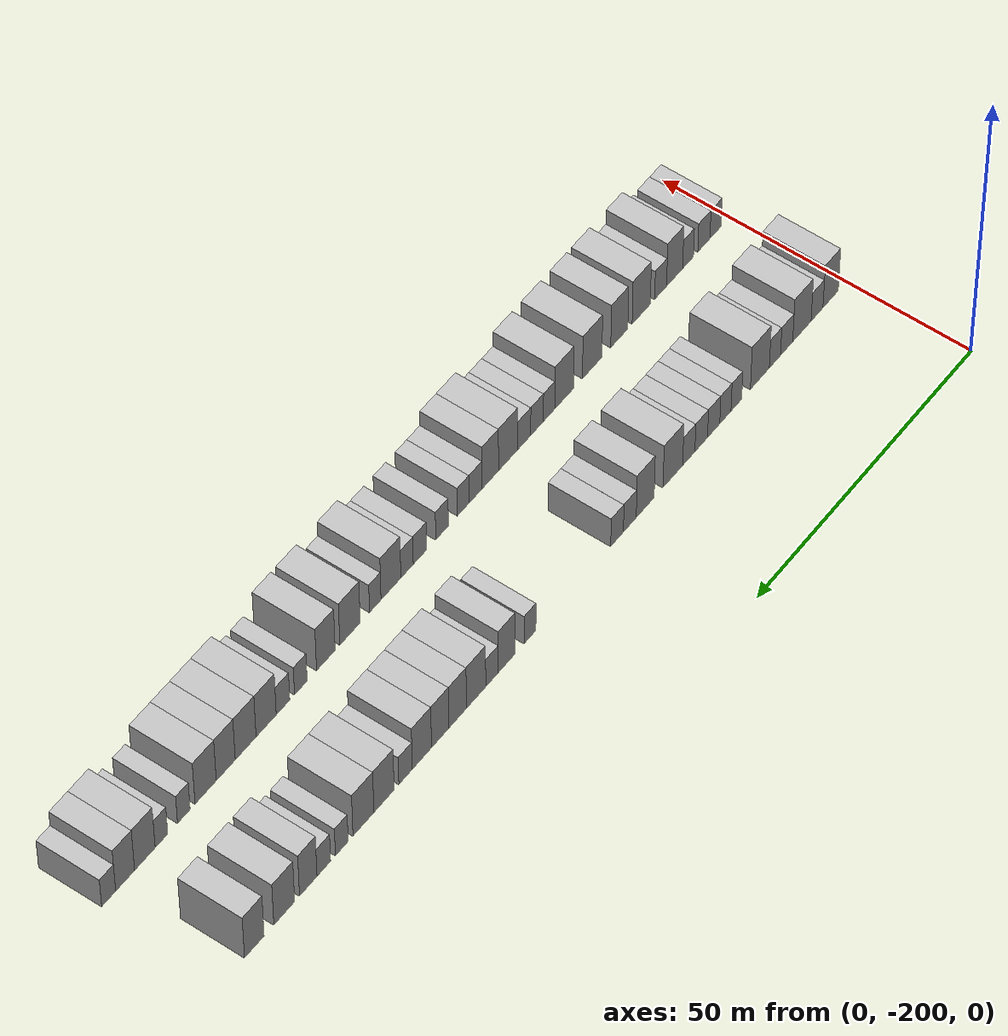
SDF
<sdf version="1.6">
 <world name="default">
  <model name="building_1">
   <static>1</static>
   <pose>25.0000 -196.1872 0 0.000000 0.000000 0.000000</pose>
   <link name="link">
    <pose>0 0 4.50 0 0 0</pose>
    <collision name="collision"><geometry><box><size>10.0000 3.6256 9.0000</size></box></geometry></collision>
    <visual name="visual">
     <cast_shadows>0</cast_shadows>
     <geometry><box><size>10.0000 3.6256 9.0000</size></box></geometry>
     <material>
      <script>
       <uri>model://HANNAS_wall/materials/scripts</uri>
       <uri>model://HANNAS_wall/materials/textures</uri>
       <name>vrc/HANNAS_wall</name>
      </script>
     </material>
    </visual>
   </link>
  </model>
  <model name="building_2">
   <static>1</static>
   <pose>25.0000 -192.9768 0 0.000000 0.000000 0.000000</pose>
   <link name="link">
    <pose>0 0 3.00 0 0 0</pose>
    <collision name="collision"><geometry><box><size>10.0000 2.7953 6.0000</size></box></geometry></collision>
    <visual name="visual">
     <cast_shadows>0</cast_shadows>
     <geometry><box><size>10.0000 2.7953 6.0000</size></box></geometry>
     <material>
      <script>
       <uri>model://HANNAS_wall/materials/scripts</uri>
       <uri>model://HANNAS_wall/materials/textures</uri>
       <name>vrc/HANNAS_wall</name>
      </script>
     </material>
    </visual>
   </link>
  </model>
  <model name="building_3">
   <static>1</static>
   <pose>25.0000 -189.4172 0 0.000000 0.000000 0.000000</pose>
   <link name="link">
    <pose>0 0 4.50 0 0 0</pose>
    <collision name="collision"><geometry><box><size>10.0000 4.3239 9.0000</size></box></geometry></collision>
    <visual name="visual">
     <cast_shadows>0</cast_shadows>
     <geometry><box><size>10.0000 4.3239 9.0000</size></box></geometry>
     <material>
      <script>
       <uri>model://HANNAS_wall/materials/scripts</uri>
       <uri>model://HANNAS_wall/materials/textures</uri>
       <name>vrc/HANNAS_wall</name>
      </script>
     </material>
    </visual>
   </link>
  </model>
  <model name="building_4">
   <static>1</static>
   <pose>25.0000 -185.8251 0 0.000000 0.000000 0.000000</pose>
   <link name="link">
    <pose>0 0 3.00 0 0 0</pose>
    <collision name="collision"><geometry><box><size>10.0000 2.8601 6.0000</size></box></geometry></collision>
    <visual name="visual">
     <cast_shadows>0</cast_shadows>
     <geometry><box><size>10.0000 2.8601 6.0000</size></box></geometry>
     <material>
      <script>
       <uri>model://HANNAS_wall/materials/scripts</uri>
       <uri>model://HANNAS_wall/materials/textures</uri>
       <name>vrc/HANNAS_wall</name>
      </script>
     </material>
    </visual>
   </link>
  </model>
  <model name="building_5">
   <static>1</static>
   <pose>25.0000 -183.0920 0 0.000000 0.000000 0.000000</pose>
   <link name="link">
    <pose>0 0 3.00 0 0 0</pose>
    <collision name="collision"><geometry><box><size>10.0000 2.6062 6.0000</size></box></geometry></collision>
    <visual name="visual">
     <cast_shadows>0</cast_shadows>
     <geometry><box><size>10.0000 2.6062 6.0000</size></box></geometry>
     <material>
      <script>
       <uri>model://HANNAS_wall/materials/scripts</uri>
       <uri>model://HANNAS_wall/materials/textures</uri>
       <name>vrc/HANNAS_wall</name>
      </script>
     </material>
    </visual>
   </link>
  </model>
  <model name="building_6">
   <static>1</static>
   <pose>25.0000 -179.5854 0 0.000000 0.000000 0.000000</pose>
   <link name="link">
    <pose>0 0 4.50 0 0 0</pose>
    <collision name="collision"><geometry><box><size>10.0000 4.4069 9.0000</size></box></geometry></collision>
    <visual name="visual">
     <cast_shadows>0</cast_shadows>
     <geometry><box><size>10.0000 4.4069 9.0000</size></box></geometry>
     <material>
      <script>
       <uri>model://HANNAS_wall/materials/scripts</uri>
       <uri>model://HANNAS_wall/materials/textures</uri>
       <name>vrc/HANNAS_wall</name>
      </script>
     </material>
    </visual>
   </link>
  </model>
  <model name="building_7">
   <static>1</static>
   <pose>25.0000 -174.1378 0 0.000000 0.000000 0.000000</pose>
   <link name="link">
    <pose>0 0 3.00 0 0 0</pose>
    <collision name="collision"><geometry><box><size>10.0000 2.4883 6.0000</size></box></geometry></collision>
    <visual name="visual">
     <cast_shadows>0</cast_shadows>
     <geometry><box><size>10.0000 2.4883 6.0000</size></box></geometry>
     <material>
      <script>
       <uri>model://HANNAS_wall/materials/scripts</uri>
       <uri>model://HANNAS_wall/materials/textures</uri>
       <name>vrc/HANNAS_wall</name>
      </script>
     </material>
    </visual>
   </link>
  </model>
  <model name="building_8">
   <static>1</static>
   <pose>25.0000 -171.6017 0 0.000000 0.000000 0.000000</pose>
   <link name="link">
    <pose>0 0 3.00 0 0 0</pose>
    <collision name="collision"><geometry><box><size>10.0000 2.5839 6.0000</size></box></geometry></collision>
    <visual name="visual">
     <cast_shadows>0</cast_shadows>
     <geometry><box><size>10.0000 2.5839 6.0000</size></box></geometry>
     <material>
      <script>
       <uri>model://HANNAS_wall/materials/scripts</uri>
       <uri>model://HANNAS_wall/materials/textures</uri>
       <name>vrc/HANNAS_wall</name>
      </script>
     </material>
    </visual>
   </link>
  </model>
  <model name="building_9">
   <static>1</static>
   <pose>25.0000 -168.9097 0 0.000000 0.000000 0.000000</pose>
   <link name="link">
    <pose>0 0 3.00 0 0 0</pose>
    <collision name="collision"><geometry><box><size>10.0000 2.8001 6.0000</size></box></geometry></collision>
    <visual name="visual">
     <cast_shadows>0</cast_shadows>
     <geometry><box><size>10.0000 2.8001 6.0000</size></box></geometry>
     <material>
      <script>
       <uri>model://HANNAS_wall/materials/scripts</uri>
       <uri>model://HANNAS_wall/materials/textures</uri>
       <name>vrc/HANNAS_wall</name>
      </script>
     </material>
    </visual>
   </link>
  </model>
  <model name="building_10">
   <static>1</static>
   <pose>25.0000 -166.0650 0 0.000000 0.000000 0.000000</pose>
   <link name="link">
    <pose>0 0 3.00 0 0 0</pose>
    <collision name="collision"><geometry><box><size>10.0000 2.8893 6.0000</size></box></geometry></collision>
    <visual name="visual">
     <cast_shadows>0</cast_shadows>
     <geometry><box><size>10.0000 2.8893 6.0000</size></box></geometry>
     <material>
      <script>
       <uri>model://HANNAS_wall/materials/scripts</uri>
       <uri>model://HANNAS_wall/materials/textures</uri>
       <name>vrc/HANNAS_wall</name>
      </script>
     </material>
    </visual>
   </link>
  </model>
  <model name="building_11">
   <static>1</static>
   <pose>25.0000 -163.2217 0 0.000000 0.000000 0.000000</pose>
   <link name="link">
    <pose>0 0 3.00 0 0 0</pose>
    <collision name="collision"><geometry><box><size>10.0000 2.7973 6.0000</size></box></geometry></collision>
    <visual name="visual">
     <cast_shadows>0</cast_shadows>
     <geometry><box><size>10.0000 2.7973 6.0000</size></box></geometry>
     <material>
      <script>
       <uri>model://HANNAS_wall/materials/scripts</uri>
       <uri>model://HANNAS_wall/materials/textures</uri>
       <name>vrc/HANNAS_wall</name>
      </script>
     </material>
    </visual>
   </link>
  </model>
  <model name="building_12">
   <static>1</static>
   <pose>25.0000 -159.5874 0 0.000000 0.000000 0.000000</pose>
   <link name="link">
    <pose>0 0 4.50 0 0 0</pose>
    <collision name="collision"><geometry><box><size>10.0000 4.4713 9.0000</size></box></geometry></collision>
    <visual name="visual">
     <cast_shadows>0</cast_shadows>
     <geometry><box><size>10.0000 4.4713 9.0000</size></box></geometry>
     <material>
      <script>
       <uri>model://HANNAS_wall/materials/scripts</uri>
       <uri>model://HANNAS_wall/materials/textures</uri>
       <name>vrc/HANNAS_wall</name>
      </script>
     </material>
    </visual>
   </link>
  </model>
  <model name="building_13">
   <static>1</static>
   <pose>25.0000 -153.3318 0 0.000000 0.000000 0.000000</pose>
   <link name="link">
    <pose>0 0 4.50 0 0 0</pose>
    <collision name="collision"><geometry><box><size>10.0000 4.0397 9.0000</size></box></geometry></collision>
    <visual name="visual">
     <cast_shadows>0</cast_shadows>
     <geometry><box><size>10.0000 4.0397 9.0000</size></box></geometry>
     <material>
      <script>
       <uri>model://HANNAS_wall/materials/scripts</uri>
       <uri>model://HANNAS_wall/materials/textures</uri>
       <name>vrc/HANNAS_wall</name>
      </script>
     </material>
    </visual>
   </link>
  </model>
  <model name="building_14">
   <static>1</static>
   <pose>25.0000 -149.8733 0 0.000000 0.000000 0.000000</pose>
   <link name="link">
    <pose>0 0 3.00 0 0 0</pose>
    <collision name="collision"><geometry><box><size>10.0000 2.8774 6.0000</size></box></geometry></collision>
    <visual name="visual">
     <cast_shadows>0</cast_shadows>
     <geometry><box><size>10.0000 2.8774 6.0000</size></box></geometry>
     <material>
      <script>
       <uri>model://HANNAS_wall/materials/scripts</uri>
       <uri>model://HANNAS_wall/materials/textures</uri>
       <name>vrc/HANNAS_wall</name>
      </script>
     </material>
    </visual>
   </link>
  </model>
  <model name="building_15">
   <static>1</static>
   <pose>25.0000 -147.0104 0 0.000000 0.000000 0.000000</pose>
   <link name="link">
    <pose>0 0 3.00 0 0 0</pose>
    <collision name="collision"><geometry><box><size>10.0000 2.8483 6.0000</size></box></geometry></collision>
    <visual name="visual">
     <cast_shadows>0</cast_shadows>
     <geometry><box><size>10.0000 2.8483 6.0000</size></box></geometry>
     <material>
      <script>
       <uri>model://HANNAS_wall/materials/scripts</uri>
       <uri>model://HANNAS_wall/materials/textures</uri>
       <name>vrc/HANNAS_wall</name>
      </script>
     </material>
    </visual>
   </link>
  </model>
  <model name="building_16">
   <static>1</static>
   <pose>25.0000 -127.7283 0 0.000000 0.000000 0.000000</pose>
   <link name="link">
    <pose>0 0 3.00 0 0 0</pose>
    <collision name="collision"><geometry><box><size>10.0000 2.5720 6.0000</size></box></geometry></collision>
    <visual name="visual">
     <cast_shadows>0</cast_shadows>
     <geometry><box><size>10.0000 2.5720 6.0000</size></box></geometry>
     <material>
      <script>
       <uri>model://HANNAS_wall/materials/scripts</uri>
       <uri>model://HANNAS_wall/materials/textures</uri>
       <name>vrc/HANNAS_wall</name>
      </script>
     </material>
    </visual>
   </link>
  </model>
  <model name="building_17">
   <static>1</static>
   <pose>25.0000 -122.6291 0 0.000000 0.000000 0.000000</pose>
   <link name="link">
    <pose>0 0 4.50 0 0 0</pose>
    <collision name="collision"><geometry><box><size>10.0000 3.6263 9.0000</size></box></geometry></collision>
    <visual name="visual">
     <cast_shadows>0</cast_shadows>
     <geometry><box><size>10.0000 3.6263 9.0000</size></box></geometry>
     <material>
      <script>
       <uri>model://HANNAS_wall/materials/scripts</uri>
       <uri>model://HANNAS_wall/materials/textures</uri>
       <name>vrc/HANNAS_wall</name>
      </script>
     </material>
    </visual>
   </link>
  </model>
  <model name="building_18">
   <static>1</static>
   <pose>25.0000 -119.4527 0 0.000000 0.000000 0.000000</pose>
   <link name="link">
    <pose>0 0 3.00 0 0 0</pose>
    <collision name="collision"><geometry><box><size>10.0000 2.7266 6.0000</size></box></geometry></collision>
    <visual name="visual">
     <cast_shadows>0</cast_shadows>
     <geometry><box><size>10.0000 2.7266 6.0000</size></box></geometry>
     <material>
      <script>
       <uri>model://HANNAS_wall/materials/scripts</uri>
       <uri>model://HANNAS_wall/materials/textures</uri>
       <name>vrc/HANNAS_wall</name>
      </script>
     </material>
    </visual>
   </link>
  </model>
  <model name="building_19">
   <static>1</static>
   <pose>25.0000 -115.9980 0 0.000000 0.000000 0.000000</pose>
   <link name="link">
    <pose>0 0 4.50 0 0 0</pose>
    <collision name="collision"><geometry><box><size>10.0000 4.1827 9.0000</size></box></geometry></collision>
    <visual name="visual">
     <cast_shadows>0</cast_shadows>
     <geometry><box><size>10.0000 4.1827 9.0000</size></box></geometry>
     <material>
      <script>
       <uri>model://HANNAS_wall/materials/scripts</uri>
       <uri>model://HANNAS_wall/materials/textures</uri>
       <name>vrc/HANNAS_wall</name>
      </script>
     </material>
    </visual>
   </link>
  </model>
  <model name="building_20">
   <static>1</static>
   <pose>25.0000 -112.0309 0 0.000000 0.000000 0.000000</pose>
   <link name="link">
    <pose>0 0 4.50 0 0 0</pose>
    <collision name="collision"><geometry><box><size>10.0000 3.7516 9.0000</size></box></geometry></collision>
    <visual name="visual">
     <cast_shadows>0</cast_shadows>
     <geometry><box><size>10.0000 3.7516 9.0000</size></box></geometry>
     <material>
      <script>
       <uri>model://HANNAS_wall/materials/scripts</uri>
       <uri>model://HANNAS_wall/materials/textures</uri>
       <name>vrc/HANNAS_wall</name>
      </script>
     </material>
    </visual>
   </link>
  </model>
  <model name="building_21">
   <static>1</static>
   <pose>25.0000 -108.2839 0 0.000000 0.000000 0.000000</pose>
   <link name="link">
    <pose>0 0 4.50 0 0 0</pose>
    <collision name="collision"><geometry><box><size>10.0000 3.7425 9.0000</size></box></geometry></collision>
    <visual name="visual">
     <cast_shadows>0</cast_shadows>
     <geometry><box><size>10.0000 3.7425 9.0000</size></box></geometry>
     <material>
      <script>
       <uri>model://HANNAS_wall/materials/scripts</uri>
       <uri>model://HANNAS_wall/materials/textures</uri>
       <name>vrc/HANNAS_wall</name>
      </script>
     </material>
    </visual>
   </link>
  </model>
  <model name="building_22">
   <static>1</static>
   <pose>25.0000 -104.3630 0 0.000000 0.000000 0.000000</pose>
   <link name="link">
    <pose>0 0 4.50 0 0 0</pose>
    <collision name="collision"><geometry><box><size>10.0000 4.0994 9.0000</size></box></geometry></collision>
    <visual name="visual">
     <cast_shadows>0</cast_shadows>
     <geometry><box><size>10.0000 4.0994 9.0000</size></box></geometry>
     <material>
      <script>
       <uri>model://HANNAS_wall/materials/scripts</uri>
       <uri>model://HANNAS_wall/materials/textures</uri>
       <name>vrc/HANNAS_wall</name>
      </script>
     </material>
    </visual>
   </link>
  </model>
  <model name="building_23">
   <static>1</static>
   <pose>25.0000 -100.8907 0 0.000000 0.000000 0.000000</pose>
   <link name="link">
    <pose>0 0 3.00 0 0 0</pose>
    <collision name="collision"><geometry><box><size>10.0000 2.8451 6.0000</size></box></geometry></collision>
    <visual name="visual">
     <cast_shadows>0</cast_shadows>
     <geometry><box><size>10.0000 2.8451 6.0000</size></box></geometry>
     <material>
      <script>
       <uri>model://HANNAS_wall/materials/scripts</uri>
       <uri>model://HANNAS_wall/materials/textures</uri>
       <name>vrc/HANNAS_wall</name>
      </script>
     </material>
    </visual>
   </link>
  </model>
  <model name="building_24">
   <static>1</static>
   <pose>25.0000 -96.3340 0 0.000000 0.000000 0.000000</pose>
   <link name="link">
    <pose>0 0 4.50 0 0 0</pose>
    <collision name="collision"><geometry><box><size>10.0000 4.2683 9.0000</size></box></geometry></collision>
    <visual name="visual">
     <cast_shadows>0</cast_shadows>
     <geometry><box><size>10.0000 4.2683 9.0000</size></box></geometry>
     <material>
      <script>
       <uri>model://HANNAS_wall/materials/scripts</uri>
       <uri>model://HANNAS_wall/materials/textures</uri>
       <name>vrc/HANNAS_wall</name>
      </script>
     </material>
    </visual>
   </link>
  </model>
  <model name="building_25">
   <static>1</static>
   <pose>25.0000 -92.0035 0 0.000000 0.000000 0.000000</pose>
   <link name="link">
    <pose>0 0 4.50 0 0 0</pose>
    <collision name="collision"><geometry><box><size>10.0000 4.3929 9.0000</size></box></geometry></collision>
    <visual name="visual">
     <cast_shadows>0</cast_shadows>
     <geometry><box><size>10.0000 4.3929 9.0000</size></box></geometry>
     <material>
      <script>
       <uri>model://HANNAS_wall/materials/scripts</uri>
       <uri>model://HANNAS_wall/materials/textures</uri>
       <name>vrc/HANNAS_wall</name>
      </script>
     </material>
    </visual>
   </link>
  </model>
  <model name="building_26">
   <static>1</static>
   <pose>25.0000 -87.4747 0 0.000000 0.000000 0.000000</pose>
   <link name="link">
    <pose>0 0 3.00 0 0 0</pose>
    <collision name="collision"><geometry><box><size>10.0000 2.6648 6.0000</size></box></geometry></collision>
    <visual name="visual">
     <cast_shadows>0</cast_shadows>
     <geometry><box><size>10.0000 2.6648 6.0000</size></box></geometry>
     <material>
      <script>
       <uri>model://HANNAS_wall/materials/scripts</uri>
       <uri>model://HANNAS_wall/materials/textures</uri>
       <name>vrc/HANNAS_wall</name>
      </script>
     </material>
    </visual>
   </link>
  </model>
  <model name="building_27">
   <static>1</static>
   <pose>25.0000 -83.7285 0 0.000000 0.000000 0.000000</pose>
   <link name="link">
    <pose>0 0 3.00 0 0 0</pose>
    <collision name="collision"><geometry><box><size>10.0000 2.8275 6.0000</size></box></geometry></collision>
    <visual name="visual">
     <cast_shadows>0</cast_shadows>
     <geometry><box><size>10.0000 2.8275 6.0000</size></box></geometry>
     <material>
      <script>
       <uri>model://HANNAS_wall/materials/scripts</uri>
       <uri>model://HANNAS_wall/materials/textures</uri>
       <name>vrc/HANNAS_wall</name>
      </script>
     </material>
    </visual>
   </link>
  </model>
  <model name="building_28">
   <static>1</static>
   <pose>25.0000 -80.5029 0 0.000000 0.000000 0.000000</pose>
   <link name="link">
    <pose>0 0 4.50 0 0 0</pose>
    <collision name="collision"><geometry><box><size>10.0000 3.6236 9.0000</size></box></geometry></collision>
    <visual name="visual">
     <cast_shadows>0</cast_shadows>
     <geometry><box><size>10.0000 3.6236 9.0000</size></box></geometry>
     <material>
      <script>
       <uri>model://HANNAS_wall/materials/scripts</uri>
       <uri>model://HANNAS_wall/materials/textures</uri>
       <name>vrc/HANNAS_wall</name>
      </script>
     </material>
    </visual>
   </link>
  </model>
  <model name="building_29">
   <static>1</static>
   <pose>25.0000 -75.5467 0 0.000000 0.000000 0.000000</pose>
   <link name="link">
    <pose>0 0 4.50 0 0 0</pose>
    <collision name="collision"><geometry><box><size>10.0000 4.2889 9.0000</size></box></geometry></collision>
    <visual name="visual">
     <cast_shadows>0</cast_shadows>
     <geometry><box><size>10.0000 4.2889 9.0000</size></box></geometry>
     <material>
      <script>
       <uri>model://HANNAS_wall/materials/scripts</uri>
       <uri>model://HANNAS_wall/materials/textures</uri>
       <name>vrc/HANNAS_wall</name>
      </script>
     </material>
    </visual>
   </link>
  </model>
  <model name="building_30">
   <static>1</static>
   <pose>25.0000 -69.4031 0 0.000000 0.000000 0.000000</pose>
   <link name="link">
    <pose>0 0 4.50 0 0 0</pose>
    <collision name="collision"><geometry><box><size>10.0000 3.9982 9.0000</size></box></geometry></collision>
    <visual name="visual">
     <cast_shadows>0</cast_shadows>
     <geometry><box><size>10.0000 3.9982 9.0000</size></box></geometry>
     <material>
      <script>
       <uri>model://HANNAS_wall/materials/scripts</uri>
       <uri>model://HANNAS_wall/materials/textures</uri>
       <name>vrc/HANNAS_wall</name>
      </script>
     </material>
    </visual>
   </link>
  </model>
  <model name="building_100">
   <static>1</static>
   <pose>44.0000 -196.6614 0 0.000000 0.000000 0.000000</pose>
   <link name="link">
    <pose>0 0 3.00 0 0 0</pose>
    <collision name="collision"><geometry><box><size>10.0000 2.6772 6.0000</size></box></geometry></collision>
    <visual name="visual">
     <cast_shadows>0</cast_shadows>
     <geometry><box><size>10.0000 2.6772 6.0000</size></box></geometry>
     <material>
      <script>
       <uri>model://HANNAS_wall/materials/scripts</uri>
       <uri>model://HANNAS_wall/materials/textures</uri>
       <name>vrc/HANNAS_wall</name>
      </script>
     </material>
    </visual>
   </link>
  </model>
  <model name="building_101">
   <static>1</static>
   <pose>44.0000 -193.8934 0 0.000000 0.000000 0.000000</pose>
   <link name="link">
    <pose>0 0 3.00 0 0 0</pose>
    <collision name="collision"><geometry><box><size>10.0000 2.8586 6.0000</size></box></geometry></collision>
    <visual name="visual">
     <cast_shadows>0</cast_shadows>
     <geometry><box><size>10.0000 2.8586 6.0000</size></box></geometry>
     <material>
      <script>
       <uri>model://HANNAS_wall/materials/scripts</uri>
       <uri>model://HANNAS_wall/materials/textures</uri>
       <name>vrc/HANNAS_wall</name>
      </script>
     </material>
    </visual>
   </link>
  </model>
  <model name="building_102">
   <static>1</static>
   <pose>44.0000 -190.1951 0 0.000000 0.000000 0.000000</pose>
   <link name="link">
    <pose>0 0 3.00 0 0 0</pose>
    <collision name="collision"><geometry><box><size>10.0000 2.5381 6.0000</size></box></geometry></collision>
    <visual name="visual">
     <cast_shadows>0</cast_shadows>
     <geometry><box><size>10.0000 2.5381 6.0000</size></box></geometry>
     <material>
      <script>
       <uri>model://HANNAS_wall/materials/scripts</uri>
       <uri>model://HANNAS_wall/materials/textures</uri>
       <name>vrc/HANNAS_wall</name>
      </script>
     </material>
    </visual>
   </link>
  </model>
  <model name="building_103">
   <static>1</static>
   <pose>44.0000 -187.0575 0 0.000000 0.000000 0.000000</pose>
   <link name="link">
    <pose>0 0 4.50 0 0 0</pose>
    <collision name="collision"><geometry><box><size>10.0000 3.7369 9.0000</size></box></geometry></collision>
    <visual name="visual">
     <cast_shadows>0</cast_shadows>
     <geometry><box><size>10.0000 3.7369 9.0000</size></box></geometry>
     <material>
      <script>
       <uri>model://HANNAS_wall/materials/scripts</uri>
       <uri>model://HANNAS_wall/materials/textures</uri>
       <name>vrc/HANNAS_wall</name>
      </script>
     </material>
    </visual>
   </link>
  </model>
  <model name="building_104">
   <static>1</static>
   <pose>44.0000 -183.8061 0 0.000000 0.000000 0.000000</pose>
   <link name="link">
    <pose>0 0 3.00 0 0 0</pose>
    <collision name="collision"><geometry><box><size>10.0000 2.7660 6.0000</size></box></geometry></collision>
    <visual name="visual">
     <cast_shadows>0</cast_shadows>
     <geometry><box><size>10.0000 2.7660 6.0000</size></box></geometry>
     <material>
      <script>
       <uri>model://HANNAS_wall/materials/scripts</uri>
       <uri>model://HANNAS_wall/materials/textures</uri>
       <name>vrc/HANNAS_wall</name>
      </script>
     </material>
    </visual>
   </link>
  </model>
  <model name="building_105">
   <static>1</static>
   <pose>44.0000 -179.3255 0 0.000000 0.000000 0.000000</pose>
   <link name="link">
    <pose>0 0 4.50 0 0 0</pose>
    <collision name="collision"><geometry><box><size>10.0000 4.1952 9.0000</size></box></geometry></collision>
    <visual name="visual">
     <cast_shadows>0</cast_shadows>
     <geometry><box><size>10.0000 4.1952 9.0000</size></box></geometry>
     <material>
      <script>
       <uri>model://HANNAS_wall/materials/scripts</uri>
       <uri>model://HANNAS_wall/materials/textures</uri>
       <name>vrc/HANNAS_wall</name>
      </script>
     </material>
    </visual>
   </link>
  </model>
  <model name="building_106">
   <static>1</static>
   <pose>44.0000 -174.2690 0 0.000000 0.000000 0.000000</pose>
   <link name="link">
    <pose>0 0 4.50 0 0 0</pose>
    <collision name="collision"><geometry><box><size>10.0000 3.9178 9.0000</size></box></geometry></collision>
    <visual name="visual">
     <cast_shadows>0</cast_shadows>
     <geometry><box><size>10.0000 3.9178 9.0000</size></box></geometry>
     <material>
      <script>
       <uri>model://HANNAS_wall/materials/scripts</uri>
       <uri>model://HANNAS_wall/materials/textures</uri>
       <name>vrc/HANNAS_wall</name>
      </script>
     </material>
    </visual>
   </link>
  </model>
  <model name="building_107">
   <static>1</static>
   <pose>44.0000 -168.0912 0 0.000000 0.000000 0.000000</pose>
   <link name="link">
    <pose>0 0 4.50 0 0 0</pose>
    <collision name="collision"><geometry><box><size>10.0000 4.4377 9.0000</size></box></geometry></collision>
    <visual name="visual">
     <cast_shadows>0</cast_shadows>
     <geometry><box><size>10.0000 4.4377 9.0000</size></box></geometry>
     <material>
      <script>
       <uri>model://HANNAS_wall/materials/scripts</uri>
       <uri>model://HANNAS_wall/materials/textures</uri>
       <name>vrc/HANNAS_wall</name>
      </script>
     </material>
    </visual>
   </link>
  </model>
  <model name="building_108">
   <static>1</static>
   <pose>44.0000 -161.7315 0 0.000000 0.000000 0.000000</pose>
   <link name="link">
    <pose>0 0 4.50 0 0 0</pose>
    <collision name="collision"><geometry><box><size>10.0000 4.2816 9.0000</size></box></geometry></collision>
    <visual name="visual">
     <cast_shadows>0</cast_shadows>
     <geometry><box><size>10.0000 4.2816 9.0000</size></box></geometry>
     <material>
      <script>
       <uri>model://HANNAS_wall/materials/scripts</uri>
       <uri>model://HANNAS_wall/materials/textures</uri>
       <name>vrc/HANNAS_wall</name>
      </script>
     </material>
    </visual>
   </link>
  </model>
  <model name="building_109">
   <static>1</static>
   <pose>44.0000 -158.3219 0 0.000000 0.000000 0.000000</pose>
   <link name="link">
    <pose>0 0 3.00 0 0 0</pose>
    <collision name="collision"><geometry><box><size>10.0000 2.5376 6.0000</size></box></geometry></collision>
    <visual name="visual">
     <cast_shadows>0</cast_shadows>
     <geometry><box><size>10.0000 2.5376 6.0000</size></box></geometry>
     <material>
      <script>
       <uri>model://HANNAS_wall/materials/scripts</uri>
       <uri>model://HANNAS_wall/materials/textures</uri>
       <name>vrc/HANNAS_wall</name>
      </script>
     </material>
    </visual>
   </link>
  </model>
  <model name="building_110">
   <static>1</static>
   <pose>44.0000 -155.6264 0 0.000000 0.000000 0.000000</pose>
   <link name="link">
    <pose>0 0 3.00 0 0 0</pose>
    <collision name="collision"><geometry><box><size>10.0000 2.8534 6.0000</size></box></geometry></collision>
    <visual name="visual">
     <cast_shadows>0</cast_shadows>
     <geometry><box><size>10.0000 2.8534 6.0000</size></box></geometry>
     <material>
      <script>
       <uri>model://HANNAS_wall/materials/scripts</uri>
       <uri>model://HANNAS_wall/materials/textures</uri>
       <name>vrc/HANNAS_wall</name>
      </script>
     </material>
    </visual>
   </link>
  </model>
  <model name="building_111">
   <static>1</static>
   <pose>44.0000 -152.7413 0 0.000000 0.000000 0.000000</pose>
   <link name="link">
    <pose>0 0 3.00 0 0 0</pose>
    <collision name="collision"><geometry><box><size>10.0000 2.9167 6.0000</size></box></geometry></collision>
    <visual name="visual">
     <cast_shadows>0</cast_shadows>
     <geometry><box><size>10.0000 2.9167 6.0000</size></box></geometry>
     <material>
      <script>
       <uri>model://HANNAS_wall/materials/scripts</uri>
       <uri>model://HANNAS_wall/materials/textures</uri>
       <name>vrc/HANNAS_wall</name>
      </script>
     </material>
    </visual>
   </link>
  </model>
  <model name="building_112">
   <static>1</static>
   <pose>44.0000 -149.1431 0 0.000000 0.000000 0.000000</pose>
   <link name="link">
    <pose>0 0 4.50 0 0 0</pose>
    <collision name="collision"><geometry><box><size>10.0000 4.2797 9.0000</size></box></geometry></collision>
    <visual name="visual">
     <cast_shadows>0</cast_shadows>
     <geometry><box><size>10.0000 4.2797 9.0000</size></box></geometry>
     <material>
      <script>
       <uri>model://HANNAS_wall/materials/scripts</uri>
       <uri>model://HANNAS_wall/materials/textures</uri>
       <name>vrc/HANNAS_wall</name>
      </script>
     </material>
    </visual>
   </link>
  </model>
  <model name="building_113">
   <static>1</static>
   <pose>44.0000 -145.1921 0 0.000000 0.000000 0.000000</pose>
   <link name="link">
    <pose>0 0 4.50 0 0 0</pose>
    <collision name="collision"><geometry><box><size>10.0000 3.6224 9.0000</size></box></geometry></collision>
    <visual name="visual">
     <cast_shadows>0</cast_shadows>
     <geometry><box><size>10.0000 3.6224 9.0000</size></box></geometry>
     <material>
      <script>
       <uri>model://HANNAS_wall/materials/scripts</uri>
       <uri>model://HANNAS_wall/materials/textures</uri>
       <name>vrc/HANNAS_wall</name>
      </script>
     </material>
    </visual>
   </link>
  </model>
  <model name="building_114">
   <static>1</static>
   <pose>44.0000 -141.9440 0 0.000000 0.000000 0.000000</pose>
   <link name="link">
    <pose>0 0 3.00 0 0 0</pose>
    <collision name="collision"><geometry><box><size>10.0000 2.8739 6.0000</size></box></geometry></collision>
    <visual name="visual">
     <cast_shadows>0</cast_shadows>
     <geometry><box><size>10.0000 2.8739 6.0000</size></box></geometry>
     <material>
      <script>
       <uri>model://HANNAS_wall/materials/scripts</uri>
       <uri>model://HANNAS_wall/materials/textures</uri>
       <name>vrc/HANNAS_wall</name>
      </script>
     </material>
    </visual>
   </link>
  </model>
  <model name="building_115">
   <static>1</static>
   <pose>44.0000 -139.2162 0 0.000000 0.000000 0.000000</pose>
   <link name="link">
    <pose>0 0 3.00 0 0 0</pose>
    <collision name="collision"><geometry><box><size>10.0000 2.5816 6.0000</size></box></geometry></collision>
    <visual name="visual">
     <cast_shadows>0</cast_shadows>
     <geometry><box><size>10.0000 2.5816 6.0000</size></box></geometry>
     <material>
      <script>
       <uri>model://HANNAS_wall/materials/scripts</uri>
       <uri>model://HANNAS_wall/materials/textures</uri>
       <name>vrc/HANNAS_wall</name>
      </script>
     </material>
    </visual>
   </link>
  </model>
  <model name="building_116">
   <static>1</static>
   <pose>44.0000 -134.5360 0 0.000000 0.000000 0.000000</pose>
   <link name="link">
    <pose>0 0 3.00 0 0 0</pose>
    <collision name="collision"><geometry><box><size>10.0000 2.7787 6.0000</size></box></geometry></collision>
    <visual name="visual">
     <cast_shadows>0</cast_shadows>
     <geometry><box><size>10.0000 2.7787 6.0000</size></box></geometry>
     <material>
      <script>
       <uri>model://HANNAS_wall/materials/scripts</uri>
       <uri>model://HANNAS_wall/materials/textures</uri>
       <name>vrc/HANNAS_wall</name>
      </script>
     </material>
    </visual>
   </link>
  </model>
  <model name="building_117">
   <static>1</static>
   <pose>44.0000 -129.6982 0 0.000000 0.000000 0.000000</pose>
   <link name="link">
    <pose>0 0 3.00 0 0 0</pose>
    <collision name="collision"><geometry><box><size>10.0000 2.8969 6.0000</size></box></geometry></collision>
    <visual name="visual">
     <cast_shadows>0</cast_shadows>
     <geometry><box><size>10.0000 2.8969 6.0000</size></box></geometry>
     <material>
      <script>
       <uri>model://HANNAS_wall/materials/scripts</uri>
       <uri>model://HANNAS_wall/materials/textures</uri>
       <name>vrc/HANNAS_wall</name>
      </script>
     </material>
    </visual>
   </link>
  </model>
  <model name="building_118">
   <static>1</static>
   <pose>44.0000 -126.8979 0 0.000000 0.000000 0.000000</pose>
   <link name="link">
    <pose>0 0 3.00 0 0 0</pose>
    <collision name="collision"><geometry><box><size>10.0000 2.7038 6.0000</size></box></geometry></collision>
    <visual name="visual">
     <cast_shadows>0</cast_shadows>
     <geometry><box><size>10.0000 2.7038 6.0000</size></box></geometry>
     <material>
      <script>
       <uri>model://HANNAS_wall/materials/scripts</uri>
       <uri>model://HANNAS_wall/materials/textures</uri>
       <name>vrc/HANNAS_wall</name>
      </script>
     </material>
    </visual>
   </link>
  </model>
  <model name="building_119">
   <static>1</static>
   <pose>44.0000 -123.4021 0 0.000000 0.000000 0.000000</pose>
   <link name="link">
    <pose>0 0 4.50 0 0 0</pose>
    <collision name="collision"><geometry><box><size>10.0000 4.2878 9.0000</size></box></geometry></collision>
    <visual name="visual">
     <cast_shadows>0</cast_shadows>
     <geometry><box><size>10.0000 4.2878 9.0000</size></box></geometry>
     <material>
      <script>
       <uri>model://HANNAS_wall/materials/scripts</uri>
       <uri>model://HANNAS_wall/materials/textures</uri>
       <name>vrc/HANNAS_wall</name>
      </script>
     </material>
    </visual>
   </link>
  </model>
  <model name="building_120">
   <static>1</static>
   <pose>44.0000 -120.0179 0 0.000000 0.000000 0.000000</pose>
   <link name="link">
    <pose>0 0 3.00 0 0 0</pose>
    <collision name="collision"><geometry><box><size>10.0000 2.4806 6.0000</size></box></geometry></collision>
    <visual name="visual">
     <cast_shadows>0</cast_shadows>
     <geometry><box><size>10.0000 2.4806 6.0000</size></box></geometry>
     <material>
      <script>
       <uri>model://HANNAS_wall/materials/scripts</uri>
       <uri>model://HANNAS_wall/materials/textures</uri>
       <name>vrc/HANNAS_wall</name>
      </script>
     </material>
    </visual>
   </link>
  </model>
  <model name="building_121">
   <static>1</static>
   <pose>44.0000 -114.5982 0 0.000000 0.000000 0.000000</pose>
   <link name="link">
    <pose>0 0 4.50 0 0 0</pose>
    <collision name="collision"><geometry><box><size>10.0000 4.3588 9.0000</size></box></geometry></collision>
    <visual name="visual">
     <cast_shadows>0</cast_shadows>
     <geometry><box><size>10.0000 4.3588 9.0000</size></box></geometry>
     <material>
      <script>
       <uri>model://HANNAS_wall/materials/scripts</uri>
       <uri>model://HANNAS_wall/materials/textures</uri>
       <name>vrc/HANNAS_wall</name>
      </script>
     </material>
    </visual>
   </link>
  </model>
  <model name="building_122">
   <static>1</static>
   <pose>44.0000 -109.4400 0 0.000000 0.000000 0.000000</pose>
   <link name="link">
    <pose>0 0 4.50 0 0 0</pose>
    <collision name="collision"><geometry><box><size>10.0000 3.9577 9.0000</size></box></geometry></collision>
    <visual name="visual">
     <cast_shadows>0</cast_shadows>
     <geometry><box><size>10.0000 3.9577 9.0000</size></box></geometry>
     <material>
      <script>
       <uri>model://HANNAS_wall/materials/scripts</uri>
       <uri>model://HANNAS_wall/materials/textures</uri>
       <name>vrc/HANNAS_wall</name>
      </script>
     </material>
    </visual>
   </link>
  </model>
  <model name="building_123">
   <static>1</static>
   <pose>44.0000 -104.1239 0 0.000000 0.000000 0.000000</pose>
   <link name="link">
    <pose>0 0 3.00 0 0 0</pose>
    <collision name="collision"><geometry><box><size>10.0000 2.6744 6.0000</size></box></geometry></collision>
    <visual name="visual">
     <cast_shadows>0</cast_shadows>
     <geometry><box><size>10.0000 2.6744 6.0000</size></box></geometry>
     <material>
      <script>
       <uri>model://HANNAS_wall/materials/scripts</uri>
       <uri>model://HANNAS_wall/materials/textures</uri>
       <name>vrc/HANNAS_wall</name>
      </script>
     </material>
    </visual>
   </link>
  </model>
  <model name="building_124">
   <static>1</static>
   <pose>44.0000 -100.3642 0 0.000000 0.000000 0.000000</pose>
   <link name="link">
    <pose>0 0 3.00 0 0 0</pose>
    <collision name="collision"><geometry><box><size>10.0000 2.8450 6.0000</size></box></geometry></collision>
    <visual name="visual">
     <cast_shadows>0</cast_shadows>
     <geometry><box><size>10.0000 2.8450 6.0000</size></box></geometry>
     <material>
      <script>
       <uri>model://HANNAS_wall/materials/scripts</uri>
       <uri>model://HANNAS_wall/materials/textures</uri>
       <name>vrc/HANNAS_wall</name>
      </script>
     </material>
    </visual>
   </link>
  </model>
  <model name="building_125">
   <static>1</static>
   <pose>44.0000 -96.8268 0 0.000000 0.000000 0.000000</pose>
   <link name="link">
    <pose>0 0 4.50 0 0 0</pose>
    <collision name="collision"><geometry><box><size>10.0000 4.2298 9.0000</size></box></geometry></collision>
    <visual name="visual">
     <cast_shadows>0</cast_shadows>
     <geometry><box><size>10.0000 4.2298 9.0000</size></box></geometry>
     <material>
      <script>
       <uri>model://HANNAS_wall/materials/scripts</uri>
       <uri>model://HANNAS_wall/materials/textures</uri>
       <name>vrc/HANNAS_wall</name>
      </script>
     </material>
    </visual>
   </link>
  </model>
  <model name="building_126">
   <static>1</static>
   <pose>44.0000 -92.5384 0 0.000000 0.000000 0.000000</pose>
   <link name="link">
    <pose>0 0 4.50 0 0 0</pose>
    <collision name="collision"><geometry><box><size>10.0000 4.3470 9.0000</size></box></geometry></collision>
    <visual name="visual">
     <cast_shadows>0</cast_shadows>
     <geometry><box><size>10.0000 4.3470 9.0000</size></box></geometry>
     <material>
      <script>
       <uri>model://HANNAS_wall/materials/scripts</uri>
       <uri>model://HANNAS_wall/materials/textures</uri>
       <name>vrc/HANNAS_wall</name>
      </script>
     </material>
    </visual>
   </link>
  </model>
  <model name="building_127">
   <static>1</static>
   <pose>44.0000 -88.3916 0 0.000000 0.000000 0.000000</pose>
   <link name="link">
    <pose>0 0 4.50 0 0 0</pose>
    <collision name="collision"><geometry><box><size>10.0000 3.9466 9.0000</size></box></geometry></collision>
    <visual name="visual">
     <cast_shadows>0</cast_shadows>
     <geometry><box><size>10.0000 3.9466 9.0000</size></box></geometry>
     <material>
      <script>
       <uri>model://HANNAS_wall/materials/scripts</uri>
       <uri>model://HANNAS_wall/materials/textures</uri>
       <name>vrc/HANNAS_wall</name>
      </script>
     </material>
    </visual>
   </link>
  </model>
  <model name="building_128">
   <static>1</static>
   <pose>44.0000 -84.2240 0 0.000000 0.000000 0.000000</pose>
   <link name="link">
    <pose>0 0 4.50 0 0 0</pose>
    <collision name="collision"><geometry><box><size>10.0000 4.3886 9.0000</size></box></geometry></collision>
    <visual name="visual">
     <cast_shadows>0</cast_shadows>
     <geometry><box><size>10.0000 4.3886 9.0000</size></box></geometry>
     <material>
      <script>
       <uri>model://HANNAS_wall/materials/scripts</uri>
       <uri>model://HANNAS_wall/materials/textures</uri>
       <name>vrc/HANNAS_wall</name>
      </script>
     </material>
    </visual>
   </link>
  </model>
  <model name="building_129">
   <static>1</static>
   <pose>44.0000 -79.7315 0 0.000000 0.000000 0.000000</pose>
   <link name="link">
    <pose>0 0 3.00 0 0 0</pose>
    <collision name="collision"><geometry><box><size>10.0000 2.5964 6.0000</size></box></geometry></collision>
    <visual name="visual">
     <cast_shadows>0</cast_shadows>
     <geometry><box><size>10.0000 2.5964 6.0000</size></box></geometry>
     <material>
      <script>
       <uri>model://HANNAS_wall/materials/scripts</uri>
       <uri>model://HANNAS_wall/materials/textures</uri>
       <name>vrc/HANNAS_wall</name>
      </script>
     </material>
    </visual>
   </link>
  </model>
  <model name="building_130">
   <static>1</static>
   <pose>44.0000 -75.1488 0 0.000000 0.000000 0.000000</pose>
   <link name="link">
    <pose>0 0 3.00 0 0 0</pose>
    <collision name="collision"><geometry><box><size>10.0000 2.5689 6.0000</size></box></geometry></collision>
    <visual name="visual">
     <cast_shadows>0</cast_shadows>
     <geometry><box><size>10.0000 2.5689 6.0000</size></box></geometry>
     <material>
      <script>
       <uri>model://HANNAS_wall/materials/scripts</uri>
       <uri>model://HANNAS_wall/materials/textures</uri>
       <name>vrc/HANNAS_wall</name>
      </script>
     </material>
    </visual>
   </link>
  </model>
  <model name="building_131">
   <static>1</static>
   <pose>44.0000 -71.7693 0 0.000000 0.000000 0.000000</pose>
   <link name="link">
    <pose>0 0 4.50 0 0 0</pose>
    <collision name="collision"><geometry><box><size>10.0000 4.1902 9.0000</size></box></geometry></collision>
    <visual name="visual">
     <cast_shadows>0</cast_shadows>
     <geometry><box><size>10.0000 4.1902 9.0000</size></box></geometry>
     <material>
      <script>
       <uri>model://HANNAS_wall/materials/scripts</uri>
       <uri>model://HANNAS_wall/materials/textures</uri>
       <name>vrc/HANNAS_wall</name>
      </script>
     </material>
    </visual>
   </link>
  </model>
  <model name="building_132">
   <static>1</static>
   <pose>44.0000 -67.7608 0 0.000000 0.000000 0.000000</pose>
   <link name="link">
    <pose>0 0 4.50 0 0 0</pose>
    <collision name="collision"><geometry><box><size>10.0000 3.8269 9.0000</size></box></geometry></collision>
    <visual name="visual">
     <cast_shadows>0</cast_shadows>
     <geometry><box><size>10.0000 3.8269 9.0000</size></box></geometry>
     <material>
      <script>
       <uri>model://HANNAS_wall/materials/scripts</uri>
       <uri>model://HANNAS_wall/materials/textures</uri>
       <name>vrc/HANNAS_wall</name>
      </script>
     </material>
    </visual>
   </link>
  </model>
  <model name="building_133">
   <static>1</static>
   <pose>44.0000 -64.4280 0 0.000000 0.000000 0.000000</pose>
   <link name="link">
    <pose>0 0 3.00 0 0 0</pose>
    <collision name="collision"><geometry><box><size>10.0000 2.8385 6.0000</size></box></geometry></collision>
    <visual name="visual">
     <cast_shadows>0</cast_shadows>
     <geometry><box><size>10.0000 2.8385 6.0000</size></box></geometry>
     <material>
      <script>
       <uri>model://HANNAS_wall/materials/scripts</uri>
       <uri>model://HANNAS_wall/materials/textures</uri>
       <name>vrc/HANNAS_wall</name>
      </script>
     </material>
    </visual>
   </link>
  </model>
 </world>
</sdf>
